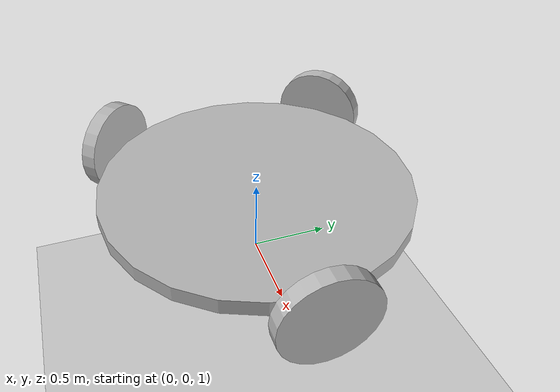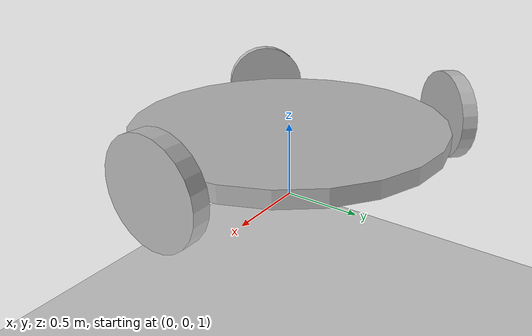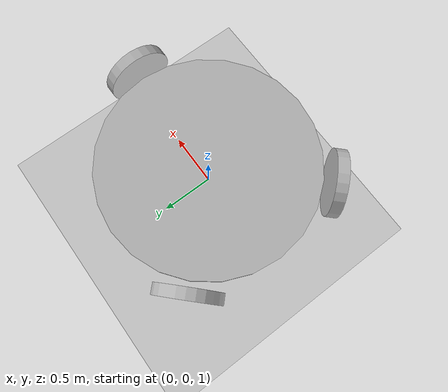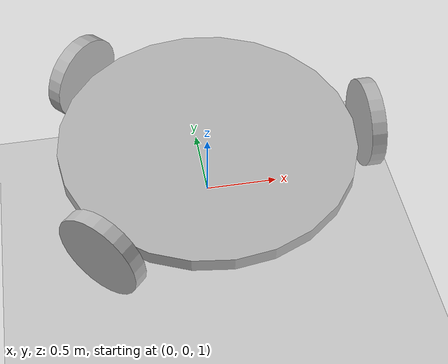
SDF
<?xml version="1.0" ?>
<sdf version="1.4">
  <world name="default">
    <physics type="ode">
      <gravity>0.000000 0.000000 -9.810000</gravity>
      <ode>
        <solver>
          <type>quick</type>
          <iters>250</iters>
          <precon_iters>0</precon_iters>
          <sor>1.400000</sor>
        </solver>
        <constraints>
          <cfm>0.000000</cfm>
          <erp>0.200000</erp>
          <contact_max_correcting_vel>0.000000</contact_max_correcting_vel>
          <contact_surface_layer>0.00000</contact_surface_layer>
        </constraints>
      </ode>
      <bullet>
        <solver>
          <type>sequential_impulse</type>
          <iters>250</iters>
          <sor>1.400000</sor>
        </solver>
        <constraints>
          <cfm>0.000000</cfm>
          <erp>0.200000</erp>
          <split_impulse>true</split_impulse>
          <split_impulse_penetration_threshold>-0.01</split_impulse_penetration_threshold>
          <contact_surface_layer>0.01000</contact_surface_layer>
        </constraints>
      </bullet>
      <simbody>
        <accuracy>0.001</accuracy>
        <max_transient_velocity>0.01</max_transient_velocity>
        <contact>
          <stiffness>1e8</stiffness>
          <dissipation>10</dissipation>
          <static_friction>0.15</static_friction>
          <dynamic_friction>0.1</dynamic_friction>
          <viscous_friction>0.0</viscous_friction>
        </contact>
      </simbody>
      <real_time_update_rate>0.000000</real_time_update_rate>
      <max_step_size>0.001000</max_step_size>
    </physics>

    <include>
      <uri>model://ground_plane</uri>
    </include>
    <include>
      <uri>model://sun</uri>
    </include>

    <!-- test contributed by jesper -->
    <model name="trikey">
      <pose>0 0 1.0 0 0 1.57</pose>
      <link name="body">
        <pose>0 0 0.5 0 0 1.57</pose>
        <collision name="collision">
          <pose>0 0 0 0 0 0</pose>
          <geometry>
            <cylinder>
              <radius>1</radius>
              <length>0.1</length>
            </cylinder>
          </geometry>
          <surface>
            <contact>
              <ode>
                <min_depth>0.01</min_depth>
              </ode>
            </contact>
            <friction>
              <bullet>
                <friction>1</friction>
                <friction2>1</friction2>
              </bullet>
              <ode>
                <mu>1</mu>
                <mu2>1</mu2>
              </ode>
            </friction>
          </surface>
        </collision>
        <visual name="visual">
          <pose>0 0 0 0 0 0</pose>
          <geometry>
            <cylinder>
              <radius>1</radius>
              <length>0.1</length>
            </cylinder>
          </geometry>
        </visual>
        <inertial>
          <mass>30.0</mass>
          <pose>0 0 0 0 0 0</pose>
          <inertia>
            <ixx>1.0</ixx>
            <iyy>3.0</iyy>
            <izz>3.0</izz>
            <ixy>0.001</ixy>
            <ixz>0.002</ixz>
            <iyz>0.003</iyz>
          </inertia>
        </inertial>
      </link>
      <joint name="body_joint" type="revolute">
        <physics>
          <provide_feedback>true</provide_feedback>
          <ode>
            <cfm_damping>true</cfm_damping>
          </ode>
        </physics>
        <axis>
          <xyz>0 0 1</xyz>
          <dynamics>
            <damping>0.000000</damping>
          </dynamics>
          <limit>
            <lower>0</lower>
            <upper>0</upper>
          </limit>
        </axis>
        <parent>world</parent>
        <child>body</child>
      </joint>

      <link name="wheel1">
        <pose>0 -1.1 0.5 1.571 0 0</pose>
        <collision name="collision">
          <pose>0 0 0 0 0 0</pose>
          <geometry>
            <cylinder>
              <radius>0.3</radius>
              <length>0.1</length>
            </cylinder>
          </geometry>
          <surface>
            <contact>
              <ode>
                <min_depth>0.01</min_depth>
              </ode>
            </contact>
            <friction>
              <bullet>
                <friction>1</friction>
                <friction2>1</friction2>
              </bullet>
              <ode>
                <mu>1</mu>
                <mu2>1</mu2>
              </ode>
            </friction>
          </surface>
        </collision>
        <visual name="visual">
          <pose>0 0 0 0 0 0</pose>
          <geometry>
            <cylinder>
              <radius>0.3</radius>
              <length>0.1</length>
            </cylinder>
          </geometry>
        </visual>
        <inertial>
          <mass>1.0</mass>
          <pose>0 0 0 0 0 0</pose>
          <inertia>
            <ixx>0.01</ixx>
            <iyy>0.02</iyy>
            <izz>0.03</izz>
            <ixy>0.0001</ixy>
            <ixz>0.0002</ixz>
            <iyz>0.0003</iyz>
          </inertia>
        </inertial>
      </link>
      <joint name="wheel1_joint" type="revolute">
        <physics>
          <provide_feedback>true</provide_feedback>
          <ode>
            <cfm_damping>true</cfm_damping>
          </ode>
        </physics>
        <axis>
          <xyz>0 -1 0</xyz>
          <dynamics>
            <damping>0.000000</damping>
          </dynamics>
        </axis>
        <parent>body</parent>
        <child>wheel1</child>
      </joint>

      <link name="wheel2">
        <pose>0.7778174593 0.7778174593 0.5 1.571 0 2.35619449</pose>
        <collision name="collision">
          <pose>0 0 0 0 0 0</pose>
          <geometry>
            <cylinder>
              <radius>0.3</radius>
              <length>0.1</length>
            </cylinder>
          </geometry>
          <surface>
            <contact>
              <ode>
                <min_depth>0.01</min_depth>
              </ode>
            </contact>
            <friction>
              <bullet>
                <friction>1</friction>
                <friction2>1</friction2>
              </bullet>
              <ode>
                <mu>1</mu>
                <mu2>1</mu2>
              </ode>
            </friction>
          </surface>
        </collision>
        <visual name="visual">
          <pose>0 0 0 0 0 0</pose>
          <geometry>
            <cylinder>
              <radius>0.3</radius>
              <length>0.1</length>
            </cylinder>
          </geometry>
        </visual>
        <inertial>
          <pose>0 0 0 0 0 0</pose>
          <mass>1.0</mass>
          <inertia>
            <ixx>0.01</ixx>
            <iyy>0.02</iyy>
            <izz>0.03</izz>
            <ixy>0.0001</ixy>
            <ixz>0.0002</ixz>
            <iyz>0.0003</iyz>
          </inertia>
        </inertial>
      </link>
      <joint name="wheel2_joint" type="revolute">
        <physics>
          <provide_feedback>true</provide_feedback>
          <ode>
            <cfm_damping>true</cfm_damping>
          </ode>
        </physics>
        <axis>
          <xyz>1 1 0</xyz>
          <dynamics>
            <damping>0.000000</damping>
          </dynamics>
        </axis>
        <parent>body</parent>
        <child>wheel2</child>
      </joint>

      <link name="wheel3">
        <pose>-0.7778174593 0.7778174593 0.5 1.571 0 -2.35619449</pose>
        <collision name="collision">
          <pose>0 0 0 0 0 0</pose>
          <geometry>
            <cylinder>
              <radius>0.3</radius>
              <length>0.1</length>
            </cylinder>
          </geometry>
          <surface>
            <contact>
              <ode>
                <min_depth>0.01</min_depth>
              </ode>
            </contact>
            <friction>
              <bullet>
                <friction>1</friction>
                <friction2>1</friction2>
              </bullet>
              <ode>
                <mu>1</mu>
                <mu2>1</mu2>
              </ode>
            </friction>
          </surface>
        </collision>
        <visual name="visual">
          <pose>0 0 0 0 0 0</pose>
          <geometry>
            <cylinder>
              <radius>0.3</radius>
              <length>0.1</length>
            </cylinder>
          </geometry>
        </visual>
        <inertial>
          <pose>0 0 0 0 0 0</pose>
          <mass>1.0</mass>
          <inertia>
            <ixx>0.01</ixx>
            <iyy>0.02</iyy>
            <izz>0.03</izz>
            <ixy>0.0001</ixy>
            <ixz>0.0002</ixz>
            <iyz>0.0003</iyz>
          </inertia>
        </inertial>
      </link>
      <joint name="wheel3_joint" type="revolute">
        <physics>
          <provide_feedback>true</provide_feedback>
          <ode>
            <cfm_damping>true</cfm_damping>
          </ode>
        </physics>
        <axis>
          <xyz>-1 1 0</xyz>
          <dynamics>
            <damping>0.000000</damping>
          </dynamics>
        </axis>
        <parent>body</parent>
        <child>wheel3</child>
      </joint>

    </model>
  </world>
</sdf>
